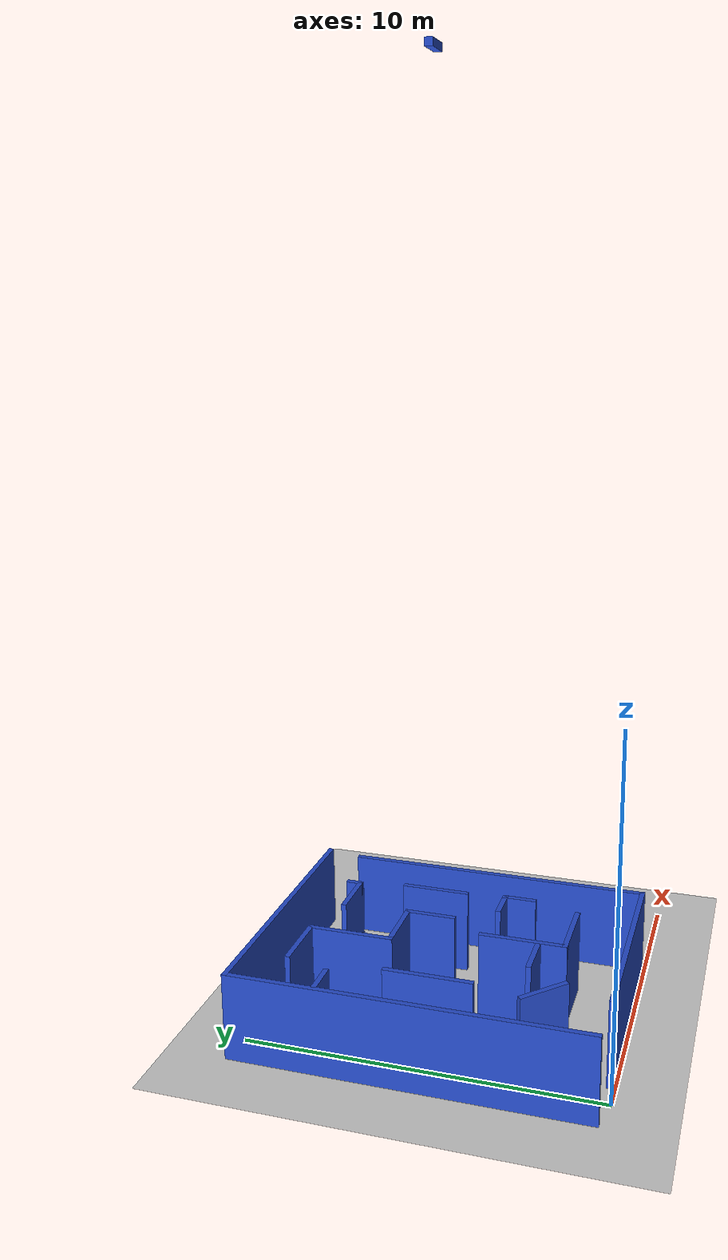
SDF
<sdf version="1.7">
 <world name="default">
  <light name="sun" type="directional">
   <pose>0 0 10 0 -0 0</pose>
   <diffuse>0.8 0.8 0.8 1</diffuse>
   <specular>0.2 0.2 0.2 1</specular>
   <attenuation>
    <range>1000</range>
    <constant>0.9</constant>
    <linear>0.01</linear>
    <quadratic>0.001</quadratic>
   </attenuation>
   <direction>-0.5 0.1 -0.9</direction>
   <spot><inner_angle>0</inner_angle><outer_angle>0</outer_angle><falloff>0</falloff></spot>
  </light>
  <model name="ground_plane">
   <static>1</static>
   <link name="link">
    <collision name="collision">
     <geometry><plane><normal>0 0 1</normal><size>100 100</size></plane></geometry>
     <surface><friction><ode><mu>100</mu><mu2>50</mu2></ode></friction></surface>
    </collision>
    <visual name="visual">
     <cast_shadows>0</cast_shadows>
     <geometry><plane><normal>0 0 1</normal><size>100 100</size></plane></geometry>
     <material>
      <script><uri>file://media/materials/scripts/gazebo.material</uri><name>Gazebo/Grey</name></script>
     </material>
    </visual>
   </link>
  </model>
  <gravity>0 0 -9.8</gravity>
  <magnetic_field>6e-06 2.3e-05 -4.2e-05</magnetic_field>
  <atmosphere type="adiabatic"/>
  <physics type="ode">
   <max_step_size>0.001</max_step_size>
   <real_time_factor>1</real_time_factor>
   <real_time_update_rate>1000</real_time_update_rate>
  </physics>
  <scene><ambient>0.4 0.4 0.4 1</ambient><background>0.7 0.7 0.7 1</background><shadows>0</shadows></scene>
  <spherical_coordinates>
   <surface_model>EARTH_WGS84</surface_model>
   <latitude_deg>0</latitude_deg>
   <longitude_deg>0</longitude_deg>
   <elevation>0</elevation>
   <heading_deg>0</heading_deg>
  </spherical_coordinates>
  <model name="overhead_camera">
   <link name="link_0">
    <inertial>
     <mass>1</mass>
     <inertia>
      <ixx>0.166667</ixx>
      <ixy>0</ixy>
      <ixz>0</ixz>
      <iyy>0.166667</iyy>
      <iyz>0</iyz>
      <izz>0.166667</izz>
     </inertia>
    </inertial>
    <pose>0 2e-06 4.4e-05 0 -0 0</pose>
    <visual name="visual">
     <geometry><box><size>0.8 0.2 0.2</size></box></geometry>
     <material>
      <lighting>1</lighting>
      <script><uri>file://media/materials/scripts/gazebo.material</uri><name>Gazebo/Blue</name></script>
      <shader type="pixel"><normal_map>__default__</normal_map></shader>
      <ambient>0.3 0.3 0.3 1</ambient>
      <diffuse>0.7 0.7 0.7 1</diffuse>
      <specular>0.01 0.01 0.01 1</specular>
      <emissive>0 0 0 1</emissive>
     </material>
     <cast_shadows>0</cast_shadows>
    </visual>
    <collision name="collision">
     <geometry><box><size>0.8 0.2 0.2</size></box></geometry>
     <surface>
      <friction>
       <ode><mu>1</mu><mu2>1</mu2><fdir1>0 0 0</fdir1><slip1>0</slip1><slip2>0</slip2></ode>
       <torsional>
        <coefficient>1</coefficient>
        <patch_radius>0</patch_radius>
        <surface_radius>0</surface_radius>
        <use_patch_radius>1</use_patch_radius>
        <ode><slip>0</slip></ode>
       </torsional>
      </friction>
      <bounce><restitution_coefficient>0</restitution_coefficient><threshold>1e+06</threshold></bounce>
      <contact>
       <collide_without_contact>0</collide_without_contact>
       <collide_without_contact_bitmask>1</collide_without_contact_bitmask>
       <collide_bitmask>1</collide_bitmask>
       <ode>
        <soft_cfm>0</soft_cfm>
        <soft_erp>0.2</soft_erp>
        <kp>1e+13</kp>
        <kd>1</kd>
        <max_vel>0.01</max_vel>
        <min_depth>0</min_depth>
       </ode>
       <bullet>
        <split_impulse>1</split_impulse>
        <split_impulse_penetration_threshold>-0.01</split_impulse_penetration_threshold>
        <soft_cfm>0</soft_cfm>
        <soft_erp>0.2</soft_erp>
        <kp>1e+13</kp>
        <kd>1</kd>
       </bullet>
      </contact>
     </surface>
    </collision>
    <sensor name="upper_camera" type="camera">
     <pose>0 0 0 0 1.57 0</pose>
     <update_rate>30</update_rate>
     <visualize>1</visualize>
     <camera name="head">
      <horizontal_fov>1.0856</horizontal_fov>
      <image><width>1280</width><height>720</height><format>R8G8B8</format></image>
      <clip><near>0.03</near><far>100</far></clip>
      <noise><type>gaussian</type><mean>0</mean><stddev>0.007</stddev></noise>
     </camera>
     <plugin name="camera_controller" filename="libgazebo_ros_camera.so">
      <alwaysOn>1</alwaysOn>
      <updateRate>0.0</updateRate>
      <cameraName>rrbot/upper_camera</cameraName>
      <imageTopicName>image_raw</imageTopicName>
      <cameraInfoTopicName>camera_info</cameraInfoTopicName>
      <frameName>camera_link</frameName>
      <hackBaseline>0.07</hackBaseline>
      <distortionK1>0.0</distortionK1>
      <distortionK2>0.0</distortionK2>
      <distortionK3>0.0</distortionK3>
      <distortionT1>0.0</distortionT1>
      <distortionT2>0.0</distortionT2>
     </plugin>
    </sensor>
   </link>
   <static>1</static>
   <pose>2.7 5.4 25.4 0 -0 0</pose>
  </model>
  <model name="world_6">
   <pose>2.95209 5.08771 0 0 -0 0</pose>
   <link name="Wall_10">
    <collision name="Wall_10_Collision">
     <geometry><box><size>7.75 0.15 2.5</size></box></geometry>
     <pose>0 0 1.25 0 -0 0</pose>
    </collision>
    <visual name="Wall_10_Visual">
     <pose>0 0 1.25 0 -0 0</pose>
     <geometry><box><size>7.75 0.15 2.5</size></box></geometry>
     <material>
      <script><uri>file://media/materials/scripts/gazebo.material</uri><name>Gazebo/Blue</name></script>
      <ambient>1 1 1 1</ambient>
     </material>
     <meta><layer>0</layer></meta>
    </visual>
    <pose>0 5.01269 0 0 -0 0</pose>
   </link>
   <link name="Wall_18">
    <collision name="Wall_18_Collision">
     <geometry><box><size>6 0.15 2.5</size></box></geometry>
     <pose>0 0 1.25 0 -0 0</pose>
    </collision>
    <visual name="Wall_18_Visual">
     <pose>0 0 1.25 0 -0 0</pose>
     <geometry><box><size>6 0.15 2.5</size></box></geometry>
     <material>
      <script><uri>file://media/materials/scripts/gazebo.material</uri><name>Gazebo/Blue</name></script>
      <ambient>1 1 1 1</ambient>
     </material>
     <meta><layer>0</layer></meta>
    </visual>
    <pose>0.698755 -4.92497 0 0 -0 0</pose>
   </link>
   <link name="Wall_19">
    <collision name="Wall_19_Collision">
     <geometry><box><size>9 0.15 2.5</size></box></geometry>
     <pose>0 0 1.25 0 -0 0</pose>
    </collision>
    <visual name="Wall_19_Visual">
     <pose>0 0 1.25 0 -0 0</pose>
     <geometry><box><size>9 0.15 2.5</size></box></geometry>
     <material>
      <script><uri>file://media/materials/scripts/gazebo.material</uri><name>Gazebo/Blue</name></script>
      <ambient>1 1 1 1</ambient>
     </material>
     <meta><layer>0</layer></meta>
    </visual>
    <pose>3.62375 -0.499968 0 0 -0 1.5708</pose>
   </link>
   <link name="Wall_30">
    <collision name="Wall_30_Collision">
     <geometry><box><size>4 0.15 2.5</size></box></geometry>
     <pose>0 0 1.25 0 -0 0</pose>
    </collision>
    <visual name="Wall_9_Visual">
     <pose>0 0 1.25 0 -0 0</pose>
     <geometry><box><size>10 0.15 2.5</size></box></geometry>
     <material>
      <script><uri>file://media/materials/scripts/gazebo.material</uri><name>Gazebo/Blue</name></script>
      <ambient>1 1 1 1</ambient>
     </material>
     <meta><layer>0</layer></meta>
    </visual>
    <pose>-3.8 0.087685 0 0 -0 1.5708</pose>
   </link>
   <static>1</static>
  </model>
  <model name="obstacle_course_8">
   <pose>2.2245 4.475 0 0 -0 0</pose>
   <link name="Wall_20">
    <collision name="Wall_20_Collision">
     <geometry><box><size>1.75 0.15 2.5</size></box></geometry>
     <pose>0 0 1.25 0 -0 0</pose>
    </collision>
    <visual name="Wall_20_Visual">
     <pose>0 0 1.25 0 -0 0</pose>
     <geometry><box><size>1.75 0.15 2.5</size></box></geometry>
     <material>
      <script><uri>file://media/materials/scripts/gazebo.material</uri><name>Gazebo/Blue</name></script>
      <ambient>0.996078 0.47451 0.0196078 1</ambient>
     </material>
     <meta><layer>0</layer></meta>
    </visual>
    <pose>-0.9615 4.4 0 0 -0 0</pose>
   </link>
   <link name="Wall_23">
    <collision name="Wall_23_Collision">
     <geometry><box><size>2.5 0.15 2.5</size></box></geometry>
     <pose>0 0 1.25 0 -0 0</pose>
    </collision>
    <visual name="Wall_23_Visual">
     <pose>0 0 1.25 0 -0 0</pose>
     <geometry><box><size>2.5 0.15 2.5</size></box></geometry>
     <material>
      <script><uri>file://media/materials/scripts/gazebo.material</uri><name>Gazebo/Blue</name></script>
      <ambient>0.996078 0.47451 0.0196078 1</ambient>
     </material>
     <meta><layer>0</layer></meta>
    </visual>
    <pose>-0.1615 3.225 0 0 -0 -1.5708</pose>
   </link>
   <link name="Wall_24">
    <collision name="Wall_24_Collision">
     <geometry><box><size>1.75 0.15 2.5</size></box></geometry>
     <pose>0 0 1.25 0 -0 0</pose>
    </collision>
    <visual name="Wall_24_Visual">
     <pose>0 0 1.25 0 -0 0</pose>
     <geometry><box><size>1.75 0.15 2.5</size></box></geometry>
     <material>
      <script><uri>file://media/materials/scripts/gazebo.material</uri><name>Gazebo/Blue</name></script>
      <ambient>0.996078 0.47451 0.0196078 1</ambient>
     </material>
     <meta><layer>0</layer></meta>
    </visual>
    <pose>0.6385 2.05 0 0 -0 0</pose>
   </link>
   <link name="Wall_25">
    <collision name="Wall_25_Collision">
     <geometry><box><size>1.5 0.15 2.5</size></box></geometry>
     <pose>0 0 1.25 0 -0 0</pose>
    </collision>
    <visual name="Wall_25_Visual">
     <pose>0 0 1.25 0 -0 0</pose>
     <geometry><box><size>1.5 0.15 2.5</size></box></geometry>
     <material>
      <script><uri>file://media/materials/scripts/gazebo.material</uri><name>Gazebo/Blue</name></script>
      <ambient>0.996078 0.47451 0.0196078 1</ambient>
     </material>
     <meta><layer>0</layer></meta>
    </visual>
    <pose>1.4385 1.375 0 0 -0 -1.5708</pose>
   </link>
   <link name="Wall_27">
    <collision name="Wall_27_Collision">
     <geometry><box><size>2.5 0.15 2.5</size></box></geometry>
     <pose>0 0 1.25 0 -0 0</pose>
    </collision>
    <visual name="Wall_27_Visual">
     <pose>0 0 1.25 0 -0 0</pose>
     <geometry><box><size>2.5 0.15 2.5</size></box></geometry>
     <material>
      <script><uri>file://media/materials/scripts/gazebo.material</uri><name>Gazebo/Blue</name></script>
      <ambient>0.996078 0.47451 0.0196078 1</ambient>
     </material>
     <meta><layer>0</layer></meta>
    </visual>
    <pose>-1.6815 0.503 0 0 -0 -1.5708</pose>
   </link>
   <link name="Wall_37">
    <collision name="Wall_37_Collision">
     <geometry><box><size>2 0.15 2.5</size></box></geometry>
     <pose>0 0 1.25 0 -0 0</pose>
    </collision>
    <visual name="Wall_37_Visual">
     <pose>0 0 1.25 0 -0 0</pose>
     <geometry><box><size>2 0.15 2.5</size></box></geometry>
     <material>
      <script><uri>file://media/materials/scripts/gazebo.material</uri><name>Gazebo/Blue</name></script>
      <ambient>0.996078 0.47451 0.0196078 1</ambient>
     </material>
     <meta><layer>0</layer></meta>
    </visual>
    <pose>2.9335 1.647 0 0 -0 1.5708</pose>
   </link>
   <link name="Wall_39">
    <collision name="Wall_39_Collision">
     <geometry><box><size>2.5 0.15 2.5</size></box></geometry>
     <pose>0 0 1.25 0 -0 0</pose>
    </collision>
    <visual name="Wall_39_Visual">
     <pose>0 0 1.25 0 -0 0</pose>
     <geometry><box><size>2.5 0.15 2.5</size></box></geometry>
     <material>
      <script><uri>file://media/materials/scripts/gazebo.material</uri><name>Gazebo/Blue</name></script>
      <ambient>0.996078 0.47451 0.0196078 1</ambient>
     </material>
     <meta><layer>0</layer></meta>
    </visual>
    <pose>0.7625 -1.495 0 0 -0 -1.5708</pose>
   </link>
   <link name="Wall_40">
    <collision name="Wall_40_Collision">
     <geometry><box><size>2 0.15 2.5</size></box></geometry>
     <pose>0 0 1.25 0 -0 0</pose>
    </collision>
    <visual name="Wall_40_Visual">
     <pose>0 0 1.25 0 -0 0</pose>
     <geometry><box><size>2 0.15 2.5</size></box></geometry>
     <material>
      <script><uri>file://media/materials/scripts/gazebo.material</uri><name>Gazebo/Blue</name></script>
      <ambient>0.996078 0.47451 0.0196078 1</ambient>
     </material>
     <meta><layer>0</layer></meta>
    </visual>
    <pose>1.6875 -2.67 0 0 -0 0</pose>
   </link>
   <link name="Wall_42">
    <collision name="Wall_42_Collision">
     <geometry><box><size>1 0.15 2.5</size></box></geometry>
     <pose>0 0 1.25 0 -0 0</pose>
    </collision>
    <visual name="Wall_42_Visual">
     <pose>0 0 1.25 0 -0 0</pose>
     <geometry><box><size>1 0.15 2.5</size></box></geometry>
     <material>
      <script><uri>file://media/materials/scripts/gazebo.material</uri><name>Gazebo/Blue</name></script>
      <ambient>0.996078 0.47451 0.0196078 1</ambient>
     </material>
     <meta><layer>0</layer></meta>
    </visual>
    <pose>2.6165 -0.454 0 0 -0 0</pose>
   </link>
   <link name="Wall_43">
    <collision name="Wall_43_Collision">
     <geometry><box><size>1 0.15 2.5</size></box></geometry>
     <pose>0 0 1.25 0 -0 0</pose>
    </collision>
    <visual name="Wall_43_Visual">
     <pose>0 0 1.25 0 -0 0</pose>
     <geometry><box><size>1 0.15 2.5</size></box></geometry>
     <material>
      <script><uri>file://media/materials/scripts/gazebo.material</uri><name>Gazebo/Blue</name></script>
      <ambient>0.996078 0.47451 0.0196078 1</ambient>
     </material>
     <meta><layer>0</layer></meta>
    </visual>
    <pose>3.0415 -0.879 0 0 -0 -1.5708</pose>
   </link>
   <link name="Wall_46">
    <collision name="Wall_46_Collision">
     <geometry><box><size>1.25 0.15 2.5</size></box></geometry>
     <pose>0 0 1.25 0 -0 0</pose>
    </collision>
    <visual name="Wall_46_Visual">
     <pose>0 0 1.25 0 -0 0</pose>
     <geometry><box><size>1.25 0.15 2.5</size></box></geometry>
     <material>
      <script><uri>file://media/materials/scripts/gazebo.material</uri><name>Gazebo/Blue</name></script>
      <ambient>0.996078 0.47451 0.0196078 1</ambient>
     </material>
     <meta><layer>0</layer></meta>
    </visual>
    <pose>0.0655 -1.932 0 0 -0 0</pose>
   </link>
   <link name="Wall_48">
    <collision name="Wall_48_Collision">
     <geometry><box><size>1.5 0.15 2.5</size></box></geometry>
     <pose>0 0 1.25 0 -0 0</pose>
    </collision>
    <visual name="Wall_48_Visual">
     <pose>0 0 1.25 0 -0 0</pose>
     <geometry><box><size>1.5 0.15 2.5</size></box></geometry>
     <material>
      <script><uri>file://media/materials/scripts/gazebo.material</uri><name>Gazebo/Blue</name></script>
      <ambient>0.996078 0.47451 0.0196078 1</ambient>
     </material>
     <meta><layer>0</layer></meta>
    </visual>
    <pose>-1.511 -2.5445 0 0 -0 -0.785398</pose>
   </link>
   <link name="Wall_50">
    <collision name="Wall_50_Collision">
     <geometry><box><size>1.5 0.15 2.5</size></box></geometry>
     <pose>0 0 1.25 0 -0 0</pose>
    </collision>
    <visual name="Wall_50_Visual">
     <pose>0 0 1.25 0 -0 0</pose>
     <geometry><box><size>1.5 0.15 2.5</size></box></geometry>
     <material>
      <script><uri>file://media/materials/scripts/gazebo.material</uri><name>Gazebo/Blue</name></script>
      <ambient>0.996078 0.47451 0.0196078 1</ambient>
     </material>
     <meta><layer>0</layer></meta>
    </visual>
    <pose>2.0135 3.95 0 0 -0 0</pose>
   </link>
   <link name="Wall_51">
    <collision name="Wall_51_Collision">
     <geometry><box><size>0.5 0.15 2.5</size></box></geometry>
     <pose>0 0 1.25 0 -0 0</pose>
    </collision>
    <visual name="Wall_51_Visual">
     <pose>0 0 1.25 0 -0 0</pose>
     <geometry><box><size>0.5 0.15 2.5</size></box></geometry>
     <material>
      <script><uri>file://media/materials/scripts/gazebo.material</uri><name>Gazebo/Blue</name></script>
      <ambient>0.996078 0.47451 0.0196078 1</ambient>
     </material>
     <meta><layer>0</layer></meta>
    </visual>
    <pose>2.6885 4.125 0 0 -0 1.5708</pose>
   </link>
   <link name="Wall_55">
    <collision name="Wall_55_Collision">
     <geometry><box><size>1 0.15 2.5</size></box></geometry>
     <pose>0 0 1.25 0 -0 0</pose>
    </collision>
    <visual name="Wall_55_Visual">
     <pose>0 0 1.25 0 -0 0</pose>
     <geometry><box><size>1 0.15 2.5</size></box></geometry>
     <material>
      <script><uri>file://media/materials/scripts/gazebo.material</uri><name>Gazebo/Blue</name></script>
      <ambient>0.996078 0.47451 0.0196078 1</ambient>
     </material>
     <meta><layer>0</layer></meta>
    </visual>
    <pose>-2.6165 3.161 0 0 -0 0</pose>
   </link>
   <static>1</static>
  </model>
 </world>
</sdf>
